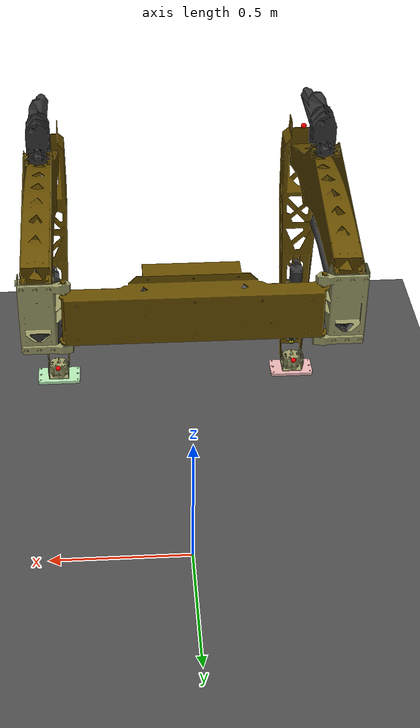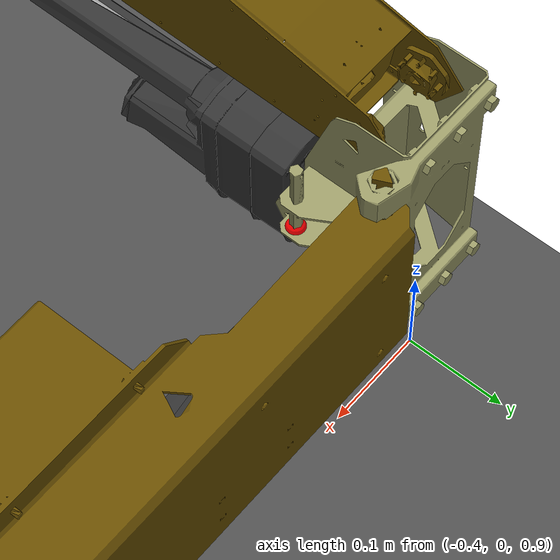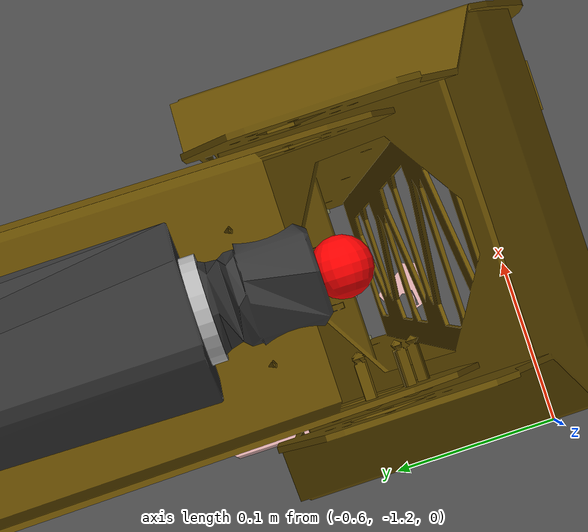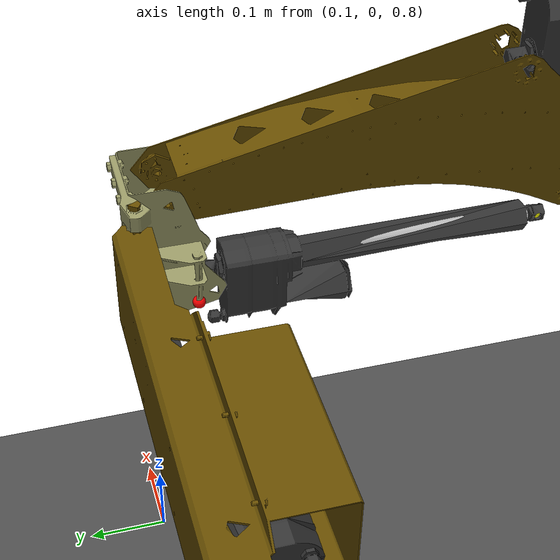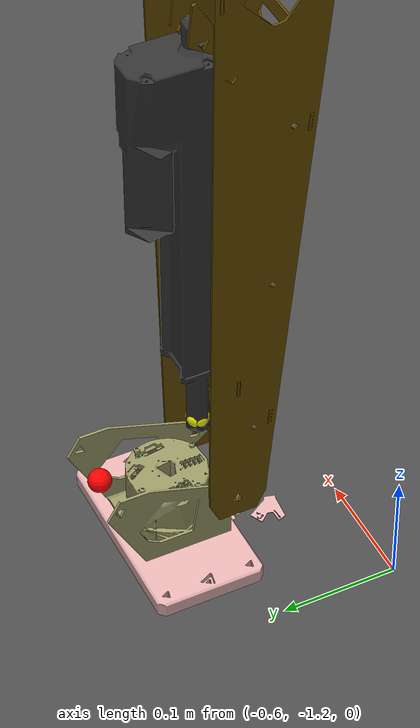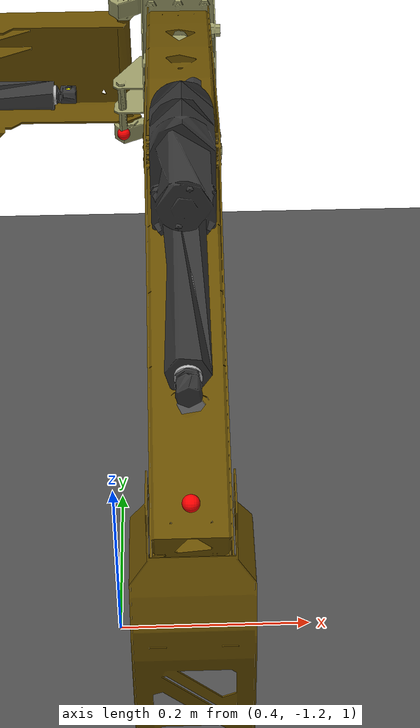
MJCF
<?xml version="1.0" ?>

<mujoco model="longbow">
    <compiler angle="radian" meshdir="assets" autolimits="true"/>

    <option noslip_iterations="10" noslip_tolerance="1e-6"/>

    <option>
        <flag gravity="enable"/>
    </option>

    <!-- Enhanced no-slip solver -->
    <option timestep="0.005"
            iterations="20"
            tolerance="1e-12"
            solver="Newton"
            jacobian="dense"
            noslip_iterations="10"
            noslip_tolerance="1e-6"/>

    <default>
        <default class="longbow">
            <joint frictionloss="0.1" armature="0.005"/>
            <position kp="50" dampratio="1"/>

            <default class="body">
                <geom type="mesh" contype="1" conaffinity="0" group="1"/>
            </default>

            <default class="hits-ground-not-body">
                <geom type="mesh" contype="1" conaffinity="0" group="1"/>
            </default>

            <default class="shaft">
                <geom type="mesh" contype="0" conaffinity="0" group="2"/>
            </default>

            <!-- Visual geom only -->
            <default class="visual-only">
                <geom type="mesh" contype="0" conaffinity="0" group="2"/>
            </default>

            <default class="tires-visual">
                <geom type="mesh" contype="0" conaffinity="0" group="2"/>
            </default>
            <default class="tires-collision">
                <geom type="mesh" contype="2" conaffinity="2" group="2"/>
            </default>

        </default>
    </default>

    <asset>
        <!-- Vehicle Materials  -->
        <mesh name="chassis_mesh" file="CHASSIS.stl"/>
        <mesh name="right_shoulder_mesh" file="RIGHT-SHOULDER.stl"/>
        <mesh name="left_shoulder_mesh" file="LEFT-SHOULDER.stl"/>
        <mesh name="forearm_slider_frame" file="FOREARM-SLIDER.stl"/>
        <mesh name="upper_arm_mesh" file="UPPERARM.stl"/>
        <mesh name="upper_arm_slider_mesh" file="UPPER-ARM-SLIDER.stl"/>
        <mesh name="forearm_mesh" file="FOREARM.stl"/>
        <mesh name="wrist_assy_mesh" file="WRIST_ASSY.stl"/>
        <mesh name="wrist_slider_mesh" file="WRIST-SLIDER.stl"/>
        <mesh name="tool-shunk-electromagnet" file="SCHUNK-EGM-B-Q-50.stl"/>

        <material name="arm_material" rgba="0.4 0.3 0.0 1"/>
        <material name="joint_material" rgba="0.6 0.6 0.4 1"/>
        <material name="housing_material" rgba="0.2 0.2 0.2 1"/>
        <material name="tool_material" rgba="0.7 0.7 0.7 1"/>
        <material name="right_tool_material" rgba="0.9 0.7 0.7 1"/>
        <material name="left_tool_material" rgba="0.7 0.9 0.7 1"/>

        <!-- Ground Materials  -->
        <texture type="2d" name="groundplane"
            builtin="checker" mark="edge" rgb1="0.2 0.2 0.2" rgb2="0.4 0.4 0.4"
            markrgb="0.8 0.8 0.8" width="300" height="300" />
        <material name="groundplane" texture="groundplane" texuniform="true" texrepeat="5 5"
            reflectance="0.001"/>
    </asset>

    <worldbody>

        <!-- Ground -->
        <geom name="ground" size="0 0 0.1" pos="0 0 0" type="plane"
            material="groundplane" contype="1" conaffinity="3" group="0"/>

        <!-- LONGBOW -->
        <body name="longbow-vehicle" pos="0 0 1" quat="1 0 0 0">

            <body name="longbow-chassis" pos="0 0 0" quat="1 0 0 0" childclass="longbow">

                <geom class="body" type="mesh" mesh="chassis_mesh"
                    pos="0 0 0" quat="1 0 0 0" material="arm_material"/>

                <!-- RIGHT SHOULDER -->
                <body name="longbow_right_shoulder"
                    pos="-0.393700 -0.034925 0.092075" quat="1 0 0 0">
                    <joint axis="0 0 1" name="revolute_right_shoulder" type="hinge"
                        ref="0.0"
                        damping="1" frictionloss="0.1"/>
                    <geom class="body" type="mesh" mesh="right_shoulder_mesh"
                        material="joint_material"/>
                    <!-- Slider body - can move along the slot axis -->
                    <body name="longbow_right_shoulder_slot_slider"
                        pos="0.005312 -0.085725 -0.115087">
                        <joint name="longbow_right_shoulder_slot_slide" type="slide"
                            axis="0 0 1" range="-0.5 0.5"/>
                        <site name="longbow_right_shoulder_slot_point"
                            pos="0 0 0"/>
                        <!-- Small visual for the pin in slot -->
                        <geom class="body" type="sphere" size="0.01" rgba="1 0 0 1"/>
                    </body>

                    <!-- RIGHT UPPER ARM -->
                    <body name="longbow-right-upper-arm"
                        pos="-0.083581 -0.053975 0.002350" quat="0.7071067 0 -0.7071067 0">

                        <joint axis="0 0 1" name="revolute_right_upper_arm" type="hinge"
                            ref="0.0"
                            damping="1" frictionloss="0.1"/>
                        <geom class="body" type="mesh" mesh="upper_arm_mesh"
                            pos="0 0 0" quat="1 0 0 0" material="arm_material"/>
                        <inertial pos="0 -0.6 0" mass="1.0" diaginertia="1 1 1"/>
                        <site name="longbow_right_upper_arm_actuator_attachment_point"
                            pos="-0.101600 -0.647700 0"/>
                        <geom class="body" type="sphere" size="0.01" rgba="1 0 0 1"
                            pos="-0.101600 -0.647700 0"/>

                        <!-- RIGHT FOREARM -->
                        <body name="longbow-right-forearm"
                            pos="-0.121920 -1.008658 0" quat="0.7071067 0 0 -0.7071067">

                            <joint axis="0 0 1" name="revolute_right_forearm" type="hinge"
                                ref="0.0"
                                damping="1" frictionloss="0.1"/>
                            <geom class="body" type="mesh" mesh="forearm_mesh"
                                pos="0.003900 0.111692 0" quat="1 0 0 0" material="arm_material"/>
                            <inertial pos="0 -0.6 0" mass="1.0" diaginertia="1 1 1"/>
                            <site name="longbow_right_forearm_actuator_attachment_point"
                                pos="0.003900 0.111692 0"/>
                            <geom class="body" type="sphere" size="0.01" rgba="1 0 0 1"
                                pos="0.003900 0.111692 0"/>

                            <!-- RIGHT WRIST -->
                            <body name="longbow-right-wrist"
                                pos="0 -0.9144 0" quat="0.5 -0.5 0.5 0.5">

                                <joint axis="1 0 0" name="revolute_right_wrist" type="hinge"
                                    ref="0.0"
                                    damping="0" frictionloss="0.05"/>
                                <geom class="body" type="mesh" mesh="wrist_assy_mesh"
                                    pos="0 0.043180 -0.040640" quat="1 0 0 0" material="joint_material"/>
                                <inertial pos="0 0.043180 -0.040640" mass="1" diaginertia="1 1 1"/>
                                <site name="longbow_right_wrist_actuator_attachment_point"
                                    pos="0.0 0.102956 0.02794"/>
                                <geom class="body" type="sphere" size="0.01" rgba="1 0 0 1"
                                    pos="0.0 0.102956 0.02794"/>

                                <!-- RIGHT TOOL - ELECTRO-MAGNET -->
                                <body name="longbow-right-magnet"
                                    pos="0 0.043180 -0.04554" quat="0 -1 0 0">

                                    <joint axis="0 0 1" name="revolute_right_tool_joint" type="hinge"
                                        range="-3.14159 3.14159"
                                        damping="1" frictionloss="1"/>
                                    <geom class="body" type="mesh" mesh="tool-shunk-electromagnet"
                                        pos="0 -0.047500 0.028500" quat="1 0 0 0" material="right_tool_material"/>
                                    <inertial pos="0 0 0" mass="0.5" diaginertia="0.5 0.5 0.5"/>
                                    <site name="rt.tool.tip"
                                        pos="0.0 0.0 0.060950"/>
                                    <geom class="body" type="sphere" size="0.01" rgba="0 1 0 1"
                                        pos="0.0 0.0 0.060950"/>
                                </body>

                            </body>

                            <!-- RIGHT WRIST ACTUATOR -->
                            <body name="longbow_right_wrist_actuator_base"
                                pos="-0.015469 -0.47144 0" quat="0 0 0 1">
                                <!-- Actuator housing -->
                                <geom class="body" type="mesh" mesh="wrist_slider_mesh"
                                    pos="0 0 0" quat="1 0 0 0" material="housing_material"/>
                                <joint axis="0 0 1" name="longbow_right_wrist_base_hinge" type="hinge"
                                    ref="0.0"
                                    damping="0" frictionloss="0"/>
                                <inertial pos="0 0.249220 0" mass="1.0" diaginertia="1 1 1"/>
                                <!-- Sliding shaft -->
                                <body name="longbow_right_writs_actuator_shaft" pos="0 0 0">
                                    <joint name="longbow_right_wrist_linear_joint"
                                        type="slide" axis="0 1 0"
                                        range="0.0 0.16"
                                        damping="100" armature="0"/>
                                    <geom class="body" name="longbow_right_writs_actuator_shaft_geom"
                                        type="cylinder" size="0.0075 0.1397"
                                        pos="0 0.249220 0" quat="0.7071067 0.7071067 0 0" rgba="0.7 0.7 0.7 1"/>
                                    <inertial pos="0 0.1397 0" mass="0.1" diaginertia="0.1 0.1 0.1"/>
                                    <site name="longbow_right_wrist_actuator_shaft_tip" pos="0 0.380170 0"/>
                                    <geom class="body" type="sphere" size="0.01" pos="0 0.380170 0" rgba="1 1 0 1"/>
                                </body>
                            </body>

                        </body>

                        <!-- RIGHT FOREARM ACTUATOR -->
                        <body name="longbow_right_forearm_actuator_base"
                            pos="0.133350 -0.540307 0" quat="0 0.7071067 0.7071067 0">
                            <!-- Actuator housing -->
                            <geom class="body" type="mesh" mesh="forearm_slider_frame"
                                pos="0 0 0" quat="1 0 0 0" material="housing_material"/>
                            <joint axis="0 0 1" name="rt.fa.base" type="hinge"
                                ref="-0.6"
                                damping="0" frictionloss="0"/>
                            <!-- Sliding shaft -->
                            <body name="longbow_right_forearm_actuator_shaft" pos="0 0 0">
                                <joint name="longbow_right_forearm_linear_joint"
                                    type="slide" axis="-1 0 0"
                                    range="0.0 0.19"
                                    damping="100" armature="0"/>
                                <geom class="body" name="longbow_right_forearm_actuator_shaft_geom"
                                    type="cylinder" size="0.015 0.117186"
                                    pos="-0.317784 0 0" quat="0.7071067 0 0.7071067 0" rgba="0.7 0.7 0.7 1"/>
                                <!-- End effector / attachment point -->
                                <site name="longbow_right_forearm_actuator_shaft_tip" pos="-0.454098 0 0"/>
                                <geom class="body" type="sphere" size="0.01" pos="-0.454098 0 0" rgba="1 1 0 1"/>
                            </body>
                        </body>

                    </body>

                    <!-- RIGHT UPPER ARM ACTUATOR -->
                    <body name="longbow_right_upper_arm_actuator_base"
                        pos="-0.083581 -0.117475 -0.170371" quat="0.5 -0.5 -0.5 0.5">
                        <!-- Actuator housing -->
                        <geom class="body" type="mesh" mesh="upper_arm_slider_mesh"
                            pos="0 0 0" quat="1 0 0 0" material="housing_material"/>
                        <joint axis="0 0 1" name="longbow_right_upper_arm_base_hinge" type="hinge"
                            ref="0.0"
                            damping="0" frictionloss="0"/>
                        <!-- Sliding shaft -->
                        <body name="longbow_right_upper_arm_actuator_shaft" pos="0 0 0">
                            <joint name="longbow_right_upper_arm_linear_joint"
                                type="slide" axis="-1 0 0"
                                range="0.0 0.27"
                                damping="100" armature="0"/>
                            <geom class="body" name="longbow_right_upper_arm_actuator_shaft_geom"
                                type="cylinder" size="0.015 0.168186"
                                pos="-0.369546 0 0" quat="0.7071067 0 0.7071067 0" rgba="0.7 0.7 0.7 1"/>
                            <!-- End effector / attachment point -->
                            <site name="longbow_right_upper_arm_actuator_shaft_tip" pos="-0.556860 0 0"/>  <!-- Connection point on shaft -->
                            <geom class="body" type="sphere" size="0.01" pos="-0.556860 0 0" rgba="1 1 0 1"/>
                        </body>
                    </body>

                </body>

                <!-- RIGHT SHOULDER ACTUATOR -->
                <body name="longbow_right_shoulder_actuator_base"
                    pos="0.152400 -0.046355 0.038418" quat="0 -0.7071067 0 0.7071067">
                    <!-- Actuator housing -->
                    <geom class="body" type="mesh" mesh="forearm_slider_frame"
                        pos="0 0 0" quat="0.7071067 0 0.7071067 0" material="housing_material"/>
                    <joint axis="1 0 0" name="longbow_right_shoulder_base_hinge" type="hinge"
                        ref="0.0"
                        damping="0" frictionloss="0"/>
                    <!-- Sliding shaft -->
                    <body name="longbow_right_shoulder_actuator_shaft" pos="0 0 0">
                        <joint name="longbow_right_shoulder_linear_joint"
                            type="slide" axis="0 0 1"
                            range="0.0 0.19"
                            damping="100" armature="0"/>
                        <geom class="body" name="longbow_right_shoulder_actuator_shaft_geom"
                            type="cylinder" size="0.015 0.117186"
                            pos="0 0 0.317784" rgba="0.7 0.7 0.7 1"/>
                        <!-- End effector / attachment point -->
                        <site name="longbow_right_shoulder_actuator_shaft_tip" pos="0 0 0.454098"/>  <!-- Connection point on shaft -->
                        <geom class="body" type="sphere" size="0.01" pos="0 0 0.454098" rgba="1 1 0 1"/>
                    </body>
                </body>

                <!-- LEFT SHOULDER -->
                <body name="longbow_left_shoulder" pos="0.393700 -0.034925 0.092075" quat="1 0 0 0">
                    <joint axis="0 0 1" name="revolute_left_shoulder" type="hinge"
                        ref="0.0"
                        damping="1" frictionloss="0.1"/>
                    <geom class="body" type="mesh" mesh="left_shoulder_mesh"
                        material="joint_material"/>

                    <!-- Slider body - can move along the slot axis -->
                    <body name="longbow_left_shoulder_slot_slider" pos="-0.005312 -0.085725 -0.158267">
                        <joint name="longbow_left_shoulder_slot_slide" type="slide"
                            axis="0 0 1" range="-0.5 0.5"/>
                        <site name="longbow_left_shoulder_slot_point"
                            pos="0 0 0"/>
                        <!-- Small visual for the pin in slot -->
                        <geom class="body" type="sphere" size="0.01" rgba="1 0 0 1"/>
                    </body>

                    <!-- LEFT UPPER ARM -->
                    <body name="longbow-left-upper-arm"
                        pos="0.083581 -0.053975 0.002350" quat="0.7071067 0 -0.7071067 0">

                        <joint axis="0 0 1" name="revolute_left_upper_arm" type="hinge"
                            ref="0.0"
                            damping="1" frictionloss="0.1"/>
                        <geom class="body" type="mesh" mesh="upper_arm_mesh"
                            pos="0 0 0" quat="1 0 0 0" material="arm_material"/>
                        <inertial pos="0 -0.6 0" mass="1.0" diaginertia="1 1 1"/>
                        <site name="longbow_left_upper_arm_actuator_attachment_point"
                            pos="-0.101600 -0.647700 0"/>
                        <geom class="body" type="sphere" size="0.01" rgba="1 0 0 1"
                            pos="-0.101600 -0.647700 0"/>

                        <!-- LEFT FOREARM -->
                        <body name="longbow-left-forearm"
                            pos="-0.121920 -1.008658 0" quat="0.7071067 0 0 -0.7071067">

                            <joint axis="0 0 1" name="revolute_left_forearm" type="hinge"
                                ref="0.0"
                                damping="1" frictionloss="0.1"/>
                            <geom class="body" type="mesh" mesh="forearm_mesh"
                                pos="0.003900 0.111692 0" quat="1 0 0 0" material="arm_material"/>
                            <inertial pos="0 -0.6 0" mass="1.0" diaginertia="1 1 1"/>
                            <site name="longbow_left_forearm_actuator_attachment_point"
                                pos="0.003900 0.111692 0"/>
                            <geom class="body" type="sphere" size="0.01" rgba="1 0 0 1"
                                pos="0.003900 0.111692 0"/>

                            <!-- LEFT WRIST -->
                            <body name="longbow-left-wrist"
                                pos="0 -0.9144 0" quat="0.5 -0.5 0.5 0.5">

                                <joint axis="1 0 0" name="revolute_left_wrist" type="hinge"
                                    ref="0.0"
                                    damping="0" frictionloss="0.05"/>
                                <geom class="body" type="mesh" mesh="wrist_assy_mesh"
                                    pos="0 0.043180 -0.040640" quat="1 0 0 0" material="joint_material"/>
                                <inertial pos="0 0.043180 -0.040640" mass="1" diaginertia="1 1 1"/>
                                <site name="longbow_left_wrist_actuator_attachment_point"
                                    pos="0.0 0.102956 0.02794"/>
                                <geom class="body" type="sphere" size="0.01" rgba="1 0 0 1"
                                    pos="0.0 0.102956 0.02794"/>

                                <!-- LEFT TOOL - ELECTRO-MAGNET -->
                                <body name="longbow-left-magnet"
                                    pos="0 0.043180 -0.04554" quat="0 -1 0 0">

                                    <joint axis="0 0 1" name="revolute_left_tool_joint" type="hinge"
                                        range="-3.14159 3.14159"
                                        damping="1" frictionloss="1"/>
                                    <geom class="body" type="mesh" mesh="tool-shunk-electromagnet"
                                        pos="0 -0.047500 0.028500" quat="1 0 0 0" material="left_tool_material"/>
                                    <inertial pos="0 0 0" mass="0.5" diaginertia="0.5 0.5 0.5"/>
                                    <site name="lf.tool.tip"
                                        pos="0.0 0.0 0.060950"/>
                                    <geom class="body" type="sphere" size="0.01" rgba="0 1 0 1"
                                        pos="0.0 0.0 0.060950"/>
                                </body>

                            </body>

                            <!-- LEFT WRIST ACTUATOR -->
                            <body name="longbow_left_wrist_actuator_base"
                                pos="-0.015469 -0.47144 0" quat="0 0 0 1">
                                <!-- Actuator housing -->
                                <geom class="body" type="mesh" mesh="wrist_slider_mesh"
                                    pos="0 0 0" quat="1 0 0 0" material="housing_material"/>
                                <joint axis="0 0 1" name="longbow_left_wrist_base_hinge" type="hinge"
                                    ref="0.0"
                                    damping="0" frictionloss="0"/>
                                <inertial pos="0 0.249220 0" mass="1.0" diaginertia="1 1 1"/>
                                <!-- Sliding shaft -->
                                <body name="longbow_left_writs_actuator_shaft" pos="0 0 0">
                                    <joint name="longbow_left_wrist_linear_joint"
                                        type="slide" axis="0 1 0"
                                        range="0.0 0.16"
                                        damping="100" armature="0"/>
                                    <geom class="body" name="longbow_left_writs_actuator_shaft_geom"
                                        type="cylinder" size="0.0075 0.1397"
                                        pos="0 0.249220 0" quat="0.7071067 0.7071067 0 0" rgba="0.7 0.7 0.7 1"/>
                                    <inertial pos="0 0.1397 0" mass="0.1" diaginertia="0.1 0.1 0.1"/>
                                    <site name="longbow_left_wrist_actuator_shaft_tip" pos="0 0.380170 0"/>
                                    <geom class="body" type="sphere" size="0.01" pos="0 0.380170 0" rgba="1 1 0 1"/>
                                </body>
                            </body>

                        </body>

                        <!-- LEFT FOREARM ACTUATOR -->
                        <body name="longbow_left_forearm_actuator_base"
                            pos="0.133350 -0.540307 0" quat="0 0.7071067 0.7071067 0">
                            <!-- Actuator housing -->
                            <geom class="body" type="mesh" mesh="forearm_slider_frame"
                                pos="0 0 0" quat="1 0 0 0" material="housing_material"/>
                            <joint axis="0 0 1" name="lf.fa.base" type="hinge"
                                ref="-0.6"
                                damping="0" frictionloss="0"/>
                            <!-- Sliding shaft -->
                            <body name="longbow_left_forearm_actuator_shaft" pos="0 0 0">
                                <joint name="longbow_left_forearm_linear_joint"
                                    type="slide" axis="-1 0 0"
                                    range="0.0 0.19"
                                    damping="100" armature="0"/>
                                <geom class="body" name="longbow_left_forearm_actuator_shaft_geom"
                                    type="cylinder" size="0.015 0.117186"
                                    pos="-0.317784 0 0" quat="0.7071067 0 0.7071067 0" rgba="0.7 0.7 0.7 1"/>
                                <!-- End effector / attachment point -->
                                <site name="longbow_left_forearm_actuator_shaft_tip" pos="-0.454098 0 0"/>
                                <geom class="body" type="sphere" size="0.01" pos="-0.454098 0 0" rgba="1 1 0 1"/>
                            </body>
                        </body>

                    </body>

                    <!-- LEFT UPPER ARM ACTUATOR -->
                    <body name="longbow_left_upper_arm_actuator_base"
                        pos="0.083581 -0.117475 -0.170371" quat="0.5 -0.5 -0.5 0.5">
                        <!-- Actuator housing -->
                        <geom class="body" type="mesh" mesh="upper_arm_slider_mesh"
                            pos="0 0 0" quat="1 0 0 0" material="housing_material"/>
                        <joint axis="0 0 1" name="longbow_left_upper_arm_base_hinge" type="hinge"
                            ref="0.0"
                            damping="0" frictionloss="0"/>
                        <!-- Sliding shaft -->
                        <body name="longbow_left_upper_arm_actuator_shaft" pos="0 0 0">
                            <joint name="longbow_left_upper_arm_linear_joint"
                                type="slide" axis="-1 0 0"
                                range="0.0 0.27"
                                damping="100" armature="0"/>
                            <geom class="body" name="longbow_left_upper_arm_actuator_shaft_geom"
                                type="cylinder" size="0.015 0.168186"
                                pos="-0.369546 0 0" quat="0.7071067 0 0.7071067 0" rgba="0.7 0.7 0.7 1"/>
                            <!-- End effector / attachment point -->
                            <site name="longbow_left_upper_arm_actuator_shaft_tip" pos="-0.556860 0 0"/>
                            <geom class="body" type="sphere" size="0.01" pos="-0.556860 0 0" rgba="1 1 0 1"/>
                        </body>
                    </body>

                </body>

                <!-- LEFT SHOULDER ACTUATOR -->
                <body name="longbow_left_shoulder_actuator_base"
                    pos="-0.152400 -0.046355 -0.038418" quat="0 0.7071067 0 0.7071067">
                    <!-- Actuator housing -->
                    <geom class="body" type="mesh" mesh="forearm_slider_frame"
                        pos="0 0 0" quat="0.7071067 0 0.7071067 0" material="housing_material"/>
                    <joint axis="1 0 0" name="longbow_left_shoulder_base_hinge" type="hinge"
                        ref="0.0"
                        damping="0" frictionloss="0"/>
                    <!-- Sliding shaft -->
                    <body name="longbow_left_shoulder_actuator_shaft" pos="0 0 0">
                        <joint name="longbow_left_shoulder_linear_joint"
                            type="slide" axis="0 0 1"
                            range="0.0 0.19"
                            damping="100" armature="0"/>
                        <geom class="body" name="longbow_left_shoulder_actuator_shaft_geom"
                            type="cylinder" size="0.015 0.117186"
                            pos="0 0 0.317784" rgba="0.7 0.7 0.7 1"/>
                        <!-- End effector / attachment point -->
                        <site name="longbow_left_shoulder_actuator_shaft_tip" pos="0 0 0.454098"/>  <!-- Connection point on shaft -->
                        <geom class="body" type="sphere" size="0.01" pos="0 0 0.454098" rgba="1 1 0 1"/>
                    </body>
                </body>

            </body>

        </body>

    </worldbody>

    <!-- Connect shaft tip to the slider (which can move along slot axis) -->
    <equality>

        <connect name="longbow_right_shoulder_actuator_connection"
            site1="longbow_right_shoulder_actuator_shaft_tip"
            site2="longbow_right_shoulder_slot_point"
            solref="0.001 1" solimp="0.99 0.999 0.001"/>

        <connect name="longbow_left_shoulder_actuator_connection"
            site1="longbow_left_shoulder_actuator_shaft_tip"
            site2="longbow_left_shoulder_slot_point"
            solref="0.001 1" solimp="0.99 0.999 0.001"/>

        <connect name="longbow_right_upper_arm_actuator_connection"
            site1="longbow_right_upper_arm_actuator_shaft_tip"
            site2="longbow_right_upper_arm_actuator_attachment_point"
            solref="0.001 1" solimp="0.99 0.999 0.001"/>

        <connect name="longbow_left_upper_arm_actuator_connection"
            site1="longbow_left_upper_arm_actuator_shaft_tip"
            site2="longbow_left_upper_arm_actuator_attachment_point"
            solref="0.001 1" solimp="0.99 0.999 0.001"/>

        <connect name="longbow_right_forearm_actuator_connection"
            site1="longbow_right_forearm_actuator_shaft_tip"
            site2="longbow_right_forearm_actuator_attachment_point"
            solref="0.001 1" solimp="0.99 0.999 0.001"/>

        <connect name="longbow_left_forearm_actuator_connection"
            site1="longbow_left_forearm_actuator_shaft_tip"
            site2="longbow_left_forearm_actuator_attachment_point"
            solref="0.001 1" solimp="0.99 0.999 0.001"/>

        <connect name="longbow_right_writs_actuator_connection"
            site1="longbow_right_wrist_actuator_shaft_tip"
            site2="longbow_right_wrist_actuator_attachment_point"
            solref="0.001 1" solimp="0.99 0.999 0.001"/>

        <connect name="longbow_left_writs_actuator_connection"
            site1="longbow_left_wrist_actuator_shaft_tip"
            site2="longbow_left_wrist_actuator_attachment_point"
            solref="0.001 1" solimp="0.99 0.999 0.001"/>

    </equality>

    <actuator>

        <!-- Position control - set target extension length -->
        <position name="rt_shoulder"
            joint="longbow_right_shoulder_linear_joint"
            kp="9000" kv="5000" ctrlrange="0 0.19"/>

        <position name="rt_upperarm"
            joint="longbow_right_upper_arm_linear_joint"
            kp="50000" kv="20000" ctrlrange="0.0 0.27"/>

        <position name="rt_forearm"
            joint="longbow_right_forearm_linear_joint"
            kp="50000" kv="20000" ctrlrange="0 0.19"/>

        <position name="rt_wrist"
            joint="longbow_right_wrist_linear_joint"
            kp="5000" kv="2000" ctrlrange="0 0.16"/>

        <position name="rt_tool"
            joint="revolute_right_tool_joint"
            kp="500" kv="50" ctrlrange="-3.14159 3.14159"/>

        <position name="lf_shoulder"
            joint="longbow_left_shoulder_linear_joint"
            kp="9000" kv="5000" ctrlrange="0 0.19"/>

        <position name="lf_upperarm"
            joint="longbow_left_upper_arm_linear_joint"
            kp="50000" kv="20000" ctrlrange="0.0 0.27"/>

        <position name="lf_forearm"
            joint="longbow_left_forearm_linear_joint"
            kp="50000" kv="20000" ctrlrange="0 0.19"/>

        <position name="lf_wrist"
            joint="longbow_left_wrist_linear_joint"
            kp="5000" kv="2000" ctrlrange="0 0.16"/>

        <position name="lf_tool"
            joint="revolute_left_tool_joint"
            kp="500" kv="50" ctrlrange="-3.14159 3.14159"/>

        <!-- velocity control -->
    </actuator>

    <sensor>
        <jointpos name="extension_sensor" joint="longbow_right_shoulder_linear_joint"/>
        <actuatorfrc name="force_sensor" actuator="rt_shoulder"/>
    </sensor>

</mujoco>
